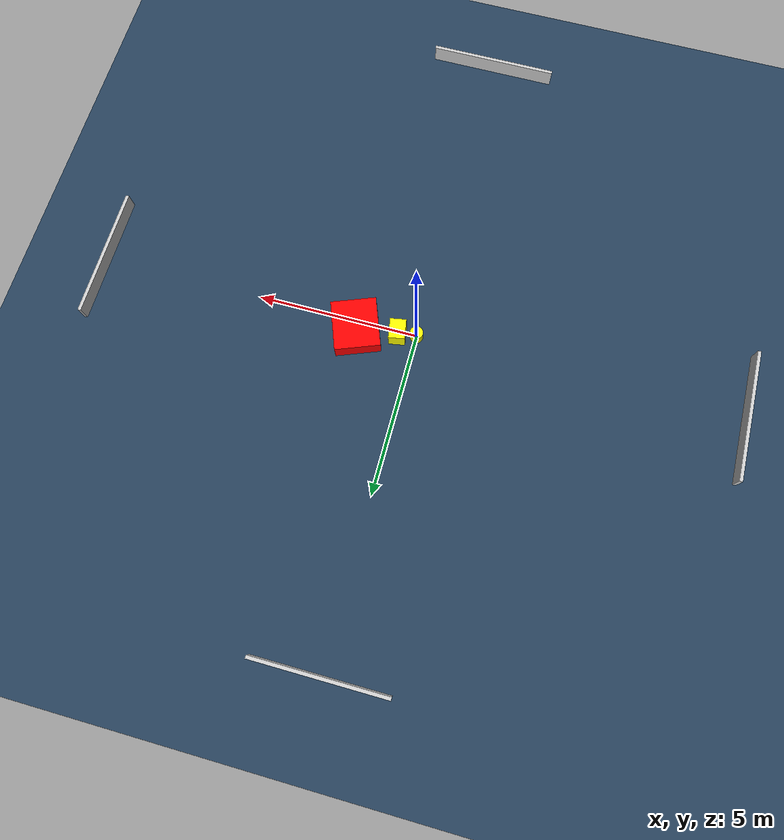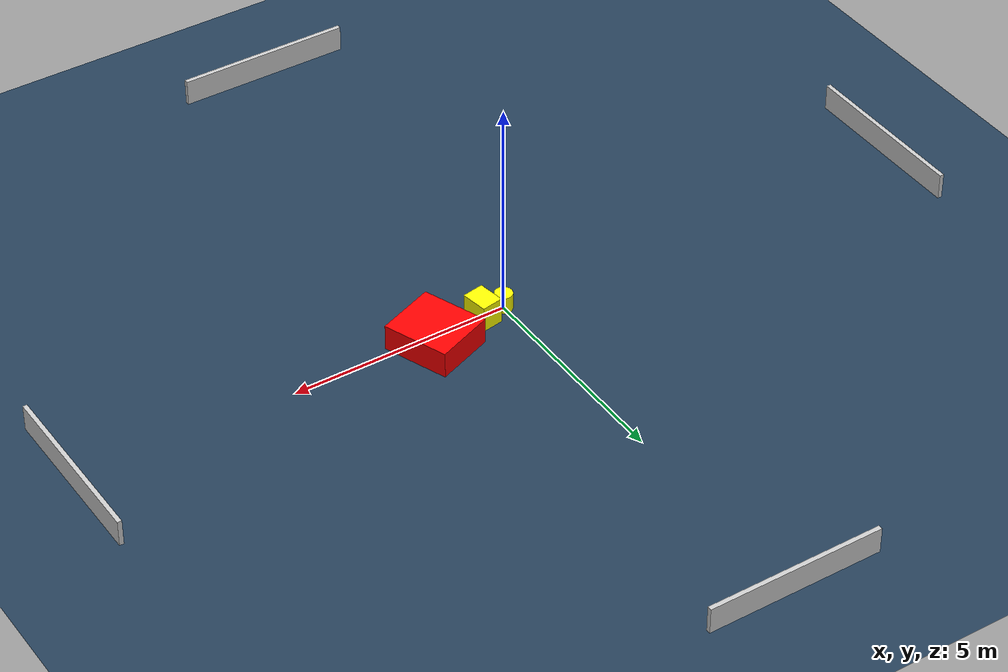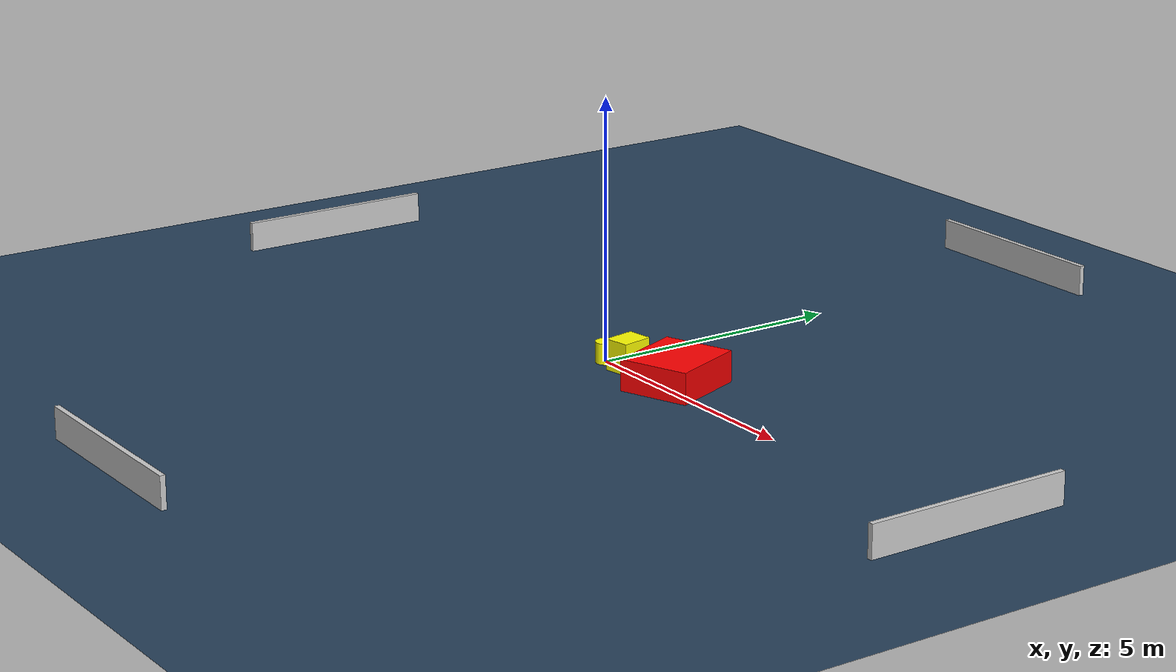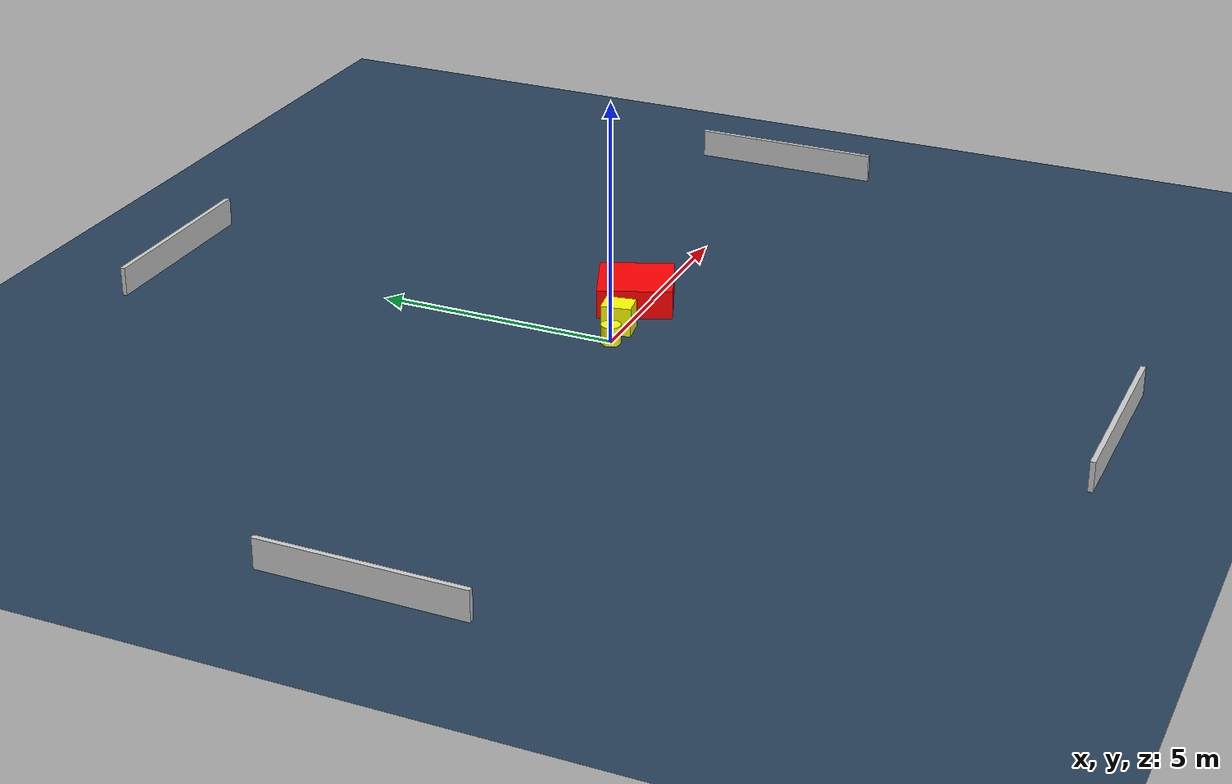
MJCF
<?xml version="1.0" ?>
<mujoco model="generated_environment">
  <option timestep="0.01" integrator="RK4" cone="elliptic"/>
  <default>
    <geom density="1"/>
  </default>
  <asset>
    <texture builtin="gradient" height="3072" name="skybox" rgb1="0.3 0.5 0.7" rgb2="0 0 0" type="skybox" width="512"/>
    <texture builtin="checker" height="300" name="groundplane" rgb1="0.2 0.3 0.4" rgb2="0.1 0.2 0.3" type="2d" width="300"/>
    <material name="groundplane" reflectance="0.2" texrepeat="5 5" texture="groundplane"/>
  </asset>
  <worldbody>
    <light dir="0 0 -1" directional="true" pos="0 0 1.5"/>
    <geom condim="3" friction="0.5 0.005 0.001" material="groundplane" name="floor" pos="0 0 0" size="0 0 0.05" type="plane"/>
    <body name="walls">
      <geom name="wall_1" condim="4" pos="-10.0 0.0 0.3" rgba="0.800000011920929 0.800000011920929 0.800000011920929 1.0" size="0.05 2.0 0.3" type="box"/>
      <geom name="wall_2" condim="4" pos="10.0 0.0 0.3" rgba="0.800000011920929 0.800000011920929 0.800000011920929 1.0" size="0.05 2.0 0.3" type="box"/>
      <geom name="wall_3" condim="4" pos="0.0 -10.0 0.3" rgba="0.800000011920929 0.800000011920929 0.800000011920929 1.0" size="2.0 0.05 0.3" type="box"/>
      <geom name="wall_4" condim="4" pos="0.0 10.0 0.3" rgba="0.800000011920929 0.800000011920929 0.800000011920929 1.0" size="2.0 0.05 0.3" type="box"/>
    </body>
    <body name="robot">
      <joint name="joint_x" type="slide" pos="0 0 0" axis="1 0 0"/>
      <joint name="joint_y" type="slide" pos="0 0 0" axis="0 1 0"/>
      <geom name="robot" type="cylinder" pos="0.0 0.0 0.2" size="0.2 0.2 0.0" mass="5.0" friction="1.0 0.005 0.0001" condim="4" rgba="1.0 1.0 0.0 1.0"/>
    </body>
    <body name="obstacle_1_movable">
      <geom name="obstacle_1_movable" condim="4" pos="0.5738345911410395 0.08953046730664738 0.3" euler="0 0 9.619321789156228" friction="0.0 0.005 0.001" rgba="1.0 1.0 0.0 1.0" size="0.2479980543027688 0.3074710027388758 0.3" type="box" mass="0.1"/>
      <joint type="free"/>
    </body>
    <body name="obstacle_2_static">
      <geom name="obstacle_2_static" condim="4" pos="1.835336585850755 0.25628636956823747 0.3" euler="0 0 291.0741694991056" friction="0.0 0.005 0.001" rgba="1.0 0.0 0.0 1.0" size="0.7641891254978646 0.6911299531785666 0.3" type="box"/>
    </body>
  </worldbody>
  <actuator>
    <motor name="actuator_x" joint="joint_x" gear="1" ctrlrange="-1 1"/>
    <motor name="actuator_y" joint="joint_y" gear="1" ctrlrange="-1 1"/>
  </actuator>
</mujoco>
